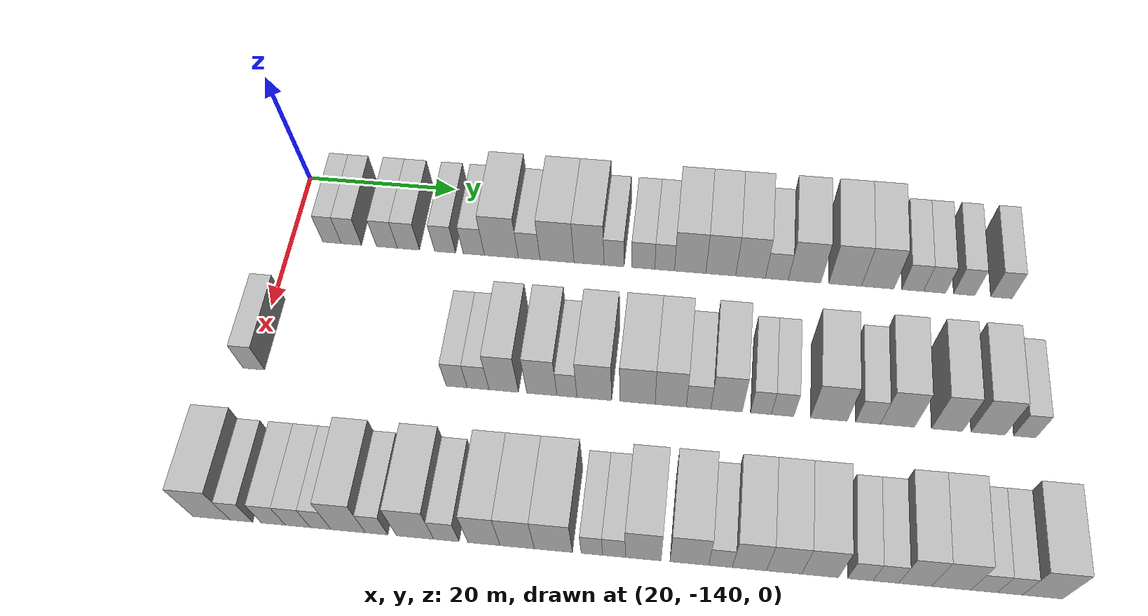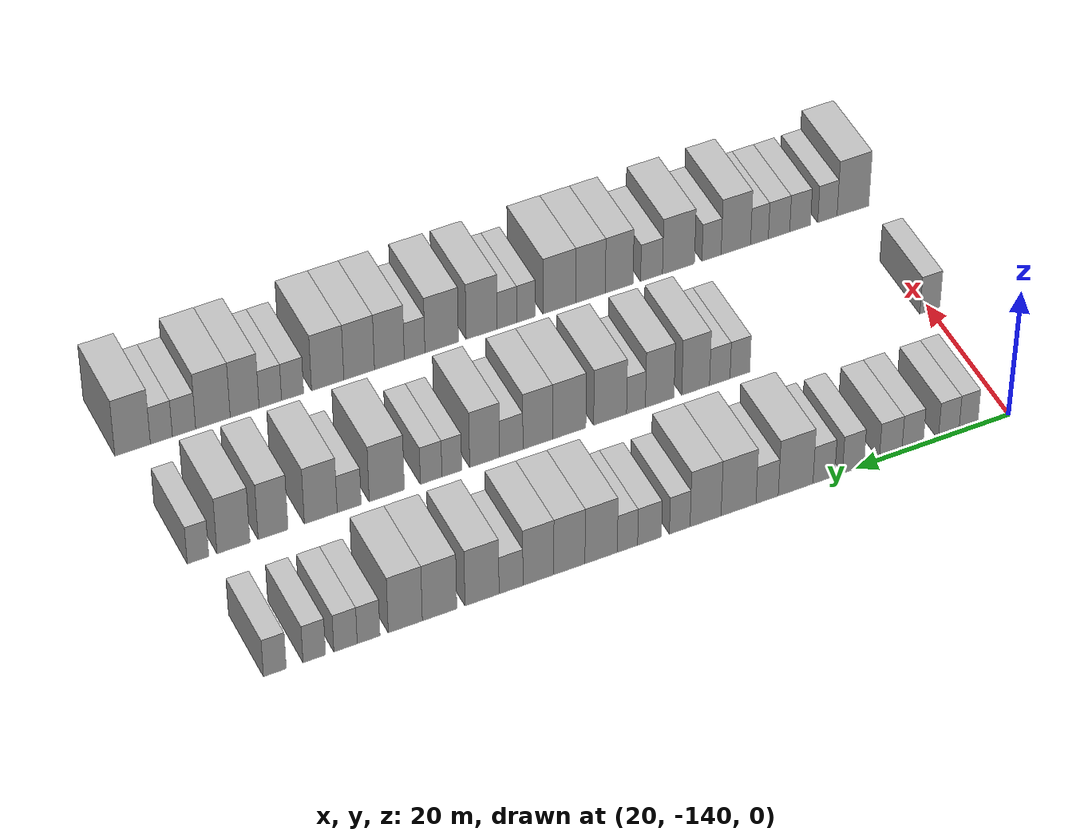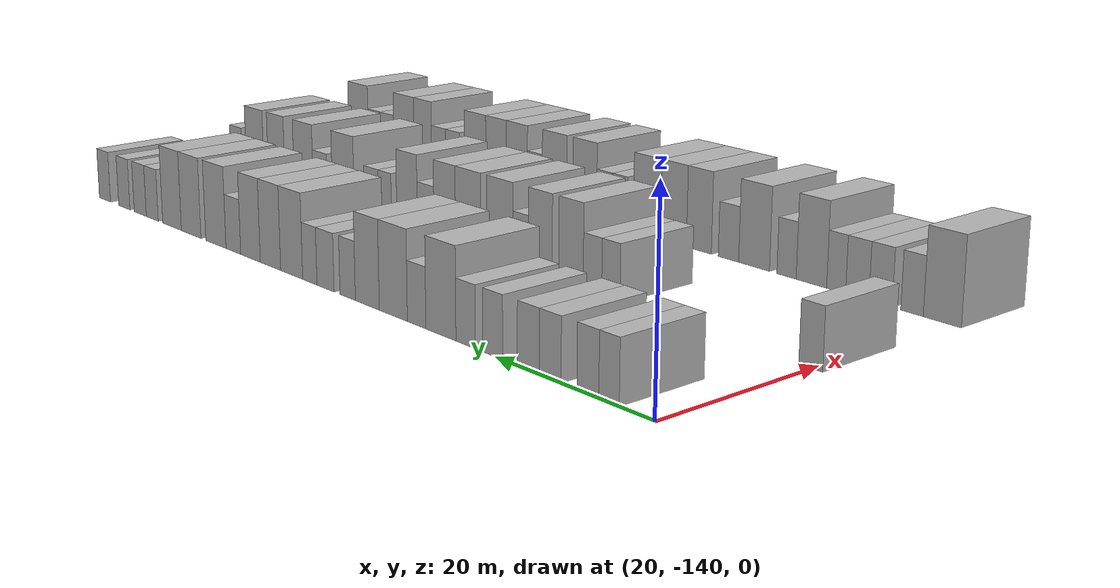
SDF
<sdf version="1.6">
 <world name="default">
  <model name="building_22">
   <static>1</static>
   <pose>25.0000 -134.5706 0 0.000000 0.000000 0.000000</pose>
   <link name="link">
    <pose>0 0 3.00 0 0 0</pose>
    <collision name="collision"><geometry><box><size>10.0000 2.4585 6.0000</size></box></geometry></collision>
    <visual name="visual">
     <cast_shadows>0</cast_shadows>
     <geometry><box><size>10.0000 2.4585 6.0000</size></box></geometry>
     <material>
      <script>
       <uri>model://HANNAS_wall/materials/scripts</uri>
       <uri>model://HANNAS_wall/materials/textures</uri>
       <name>vrc/HANNAS_wall</name>
      </script>
     </material>
    </visual>
   </link>
  </model>
  <model name="building_23">
   <static>1</static>
   <pose>25.0000 -131.9999 0 0.000000 0.000000 0.000000</pose>
   <link name="link">
    <pose>0 0 3.00 0 0 0</pose>
    <collision name="collision"><geometry><box><size>10.0000 2.6829 6.0000</size></box></geometry></collision>
    <visual name="visual">
     <cast_shadows>0</cast_shadows>
     <geometry><box><size>10.0000 2.6829 6.0000</size></box></geometry>
     <material>
      <script>
       <uri>model://HANNAS_wall/materials/scripts</uri>
       <uri>model://HANNAS_wall/materials/textures</uri>
       <name>vrc/HANNAS_wall</name>
      </script>
     </material>
    </visual>
   </link>
  </model>
  <model name="building_24">
   <static>1</static>
   <pose>25.0000 -127.2707 0 0.000000 0.000000 0.000000</pose>
   <link name="link">
    <pose>0 0 3.00 0 0 0</pose>
    <collision name="collision"><geometry><box><size>10.0000 2.7756 6.0000</size></box></geometry></collision>
    <visual name="visual">
     <cast_shadows>0</cast_shadows>
     <geometry><box><size>10.0000 2.7756 6.0000</size></box></geometry>
     <material>
      <script>
       <uri>model://HANNAS_wall/materials/scripts</uri>
       <uri>model://HANNAS_wall/materials/textures</uri>
       <name>vrc/HANNAS_wall</name>
      </script>
     </material>
    </visual>
   </link>
  </model>
  <model name="building_25">
   <static>1</static>
   <pose>25.0000 -124.4217 0 0.000000 0.000000 0.000000</pose>
   <link name="link">
    <pose>0 0 3.00 0 0 0</pose>
    <collision name="collision"><geometry><box><size>10.0000 2.9224 6.0000</size></box></geometry></collision>
    <visual name="visual">
     <cast_shadows>0</cast_shadows>
     <geometry><box><size>10.0000 2.9224 6.0000</size></box></geometry>
     <material>
      <script>
       <uri>model://HANNAS_wall/materials/scripts</uri>
       <uri>model://HANNAS_wall/materials/textures</uri>
       <name>vrc/HANNAS_wall</name>
      </script>
     </material>
    </visual>
   </link>
  </model>
  <model name="building_26">
   <static>1</static>
   <pose>25.0000 -119.5755 0 0.000000 0.000000 0.000000</pose>
   <link name="link">
    <pose>0 0 3.00 0 0 0</pose>
    <collision name="collision"><geometry><box><size>10.0000 2.7701 6.0000</size></box></geometry></collision>
    <visual name="visual">
     <cast_shadows>0</cast_shadows>
     <geometry><box><size>10.0000 2.7701 6.0000</size></box></geometry>
     <material>
      <script>
       <uri>model://HANNAS_wall/materials/scripts</uri>
       <uri>model://HANNAS_wall/materials/textures</uri>
       <name>vrc/HANNAS_wall</name>
      </script>
     </material>
    </visual>
   </link>
  </model>
  <model name="building_27">
   <static>1</static>
   <pose>25.0000 -115.7886 0 0.000000 0.000000 0.000000</pose>
   <link name="link">
    <pose>0 0 3.00 0 0 0</pose>
    <collision name="collision"><geometry><box><size>10.0000 2.8036 6.0000</size></box></geometry></collision>
    <visual name="visual">
     <cast_shadows>0</cast_shadows>
     <geometry><box><size>10.0000 2.8036 6.0000</size></box></geometry>
     <material>
      <script>
       <uri>model://HANNAS_wall/materials/scripts</uri>
       <uri>model://HANNAS_wall/materials/textures</uri>
       <name>vrc/HANNAS_wall</name>
      </script>
     </material>
    </visual>
   </link>
  </model>
  <model name="building_28">
   <static>1</static>
   <pose>25.0000 -112.1589 0 0.000000 0.000000 0.000000</pose>
   <link name="link">
    <pose>0 0 4.50 0 0 0</pose>
    <collision name="collision"><geometry><box><size>10.0000 4.4559 9.0000</size></box></geometry></collision>
    <visual name="visual">
     <cast_shadows>0</cast_shadows>
     <geometry><box><size>10.0000 4.4559 9.0000</size></box></geometry>
     <material>
      <script>
       <uri>model://HANNAS_wall/materials/scripts</uri>
       <uri>model://HANNAS_wall/materials/textures</uri>
       <name>vrc/HANNAS_wall</name>
      </script>
     </material>
    </visual>
   </link>
  </model>
  <model name="building_29">
   <static>1</static>
   <pose>25.0000 -108.5100 0 0.000000 0.000000 0.000000</pose>
   <link name="link">
    <pose>0 0 3.00 0 0 0</pose>
    <collision name="collision"><geometry><box><size>10.0000 2.8418 6.0000</size></box></geometry></collision>
    <visual name="visual">
     <cast_shadows>0</cast_shadows>
     <geometry><box><size>10.0000 2.8418 6.0000</size></box></geometry>
     <material>
      <script>
       <uri>model://HANNAS_wall/materials/scripts</uri>
       <uri>model://HANNAS_wall/materials/textures</uri>
       <name>vrc/HANNAS_wall</name>
      </script>
     </material>
    </visual>
   </link>
  </model>
  <model name="building_30">
   <static>1</static>
   <pose>25.0000 -104.8680 0 0.000000 0.000000 0.000000</pose>
   <link name="link">
    <pose>0 0 4.50 0 0 0</pose>
    <collision name="collision"><geometry><box><size>10.0000 4.4422 9.0000</size></box></geometry></collision>
    <visual name="visual">
     <cast_shadows>0</cast_shadows>
     <geometry><box><size>10.0000 4.4422 9.0000</size></box></geometry>
     <material>
      <script>
       <uri>model://HANNAS_wall/materials/scripts</uri>
       <uri>model://HANNAS_wall/materials/textures</uri>
       <name>vrc/HANNAS_wall</name>
      </script>
     </material>
    </visual>
   </link>
  </model>
  <model name="building_31">
   <static>1</static>
   <pose>25.0000 -100.6837 0 0.000000 0.000000 0.000000</pose>
   <link name="link">
    <pose>0 0 4.50 0 0 0</pose>
    <collision name="collision"><geometry><box><size>10.0000 3.9265 9.0000</size></box></geometry></collision>
    <visual name="visual">
     <cast_shadows>0</cast_shadows>
     <geometry><box><size>10.0000 3.9265 9.0000</size></box></geometry>
     <material>
      <script>
       <uri>model://HANNAS_wall/materials/scripts</uri>
       <uri>model://HANNAS_wall/materials/textures</uri>
       <name>vrc/HANNAS_wall</name>
      </script>
     </material>
    </visual>
   </link>
  </model>
  <model name="building_32">
   <static>1</static>
   <pose>25.0000 -97.4180 0 0.000000 0.000000 0.000000</pose>
   <link name="link">
    <pose>0 0 3.00 0 0 0</pose>
    <collision name="collision"><geometry><box><size>10.0000 2.6049 6.0000</size></box></geometry></collision>
    <visual name="visual">
     <cast_shadows>0</cast_shadows>
     <geometry><box><size>10.0000 2.6049 6.0000</size></box></geometry>
     <material>
      <script>
       <uri>model://HANNAS_wall/materials/scripts</uri>
       <uri>model://HANNAS_wall/materials/textures</uri>
       <name>vrc/HANNAS_wall</name>
      </script>
     </material>
    </visual>
   </link>
  </model>
  <model name="building_33">
   <static>1</static>
   <pose>25.0000 -93.6222 0 0.000000 0.000000 0.000000</pose>
   <link name="link">
    <pose>0 0 3.00 0 0 0</pose>
    <collision name="collision"><geometry><box><size>10.0000 2.9867 6.0000</size></box></geometry></collision>
    <visual name="visual">
     <cast_shadows>0</cast_shadows>
     <geometry><box><size>10.0000 2.9867 6.0000</size></box></geometry>
     <material>
      <script>
       <uri>model://HANNAS_wall/materials/scripts</uri>
       <uri>model://HANNAS_wall/materials/textures</uri>
       <name>vrc/HANNAS_wall</name>
      </script>
     </material>
    </visual>
   </link>
  </model>
  <model name="building_34">
   <static>1</static>
   <pose>25.0000 -90.8556 0 0.000000 0.000000 0.000000</pose>
   <link name="link">
    <pose>0 0 3.00 0 0 0</pose>
    <collision name="collision"><geometry><box><size>10.0000 2.5463 6.0000</size></box></geometry></collision>
    <visual name="visual">
     <cast_shadows>0</cast_shadows>
     <geometry><box><size>10.0000 2.5463 6.0000</size></box></geometry>
     <material>
      <script>
       <uri>model://HANNAS_wall/materials/scripts</uri>
       <uri>model://HANNAS_wall/materials/textures</uri>
       <name>vrc/HANNAS_wall</name>
      </script>
     </material>
    </visual>
   </link>
  </model>
  <model name="building_35">
   <static>1</static>
   <pose>25.0000 -87.5665 0 0.000000 0.000000 0.000000</pose>
   <link name="link">
    <pose>0 0 4.50 0 0 0</pose>
    <collision name="collision"><geometry><box><size>10.0000 4.0319 9.0000</size></box></geometry></collision>
    <visual name="visual">
     <cast_shadows>0</cast_shadows>
     <geometry><box><size>10.0000 4.0319 9.0000</size></box></geometry>
     <material>
      <script>
       <uri>model://HANNAS_wall/materials/scripts</uri>
       <uri>model://HANNAS_wall/materials/textures</uri>
       <name>vrc/HANNAS_wall</name>
      </script>
     </material>
    </visual>
   </link>
  </model>
  <model name="building_36">
   <static>1</static>
   <pose>25.0000 -83.6215 0 0.000000 0.000000 0.000000</pose>
   <link name="link">
    <pose>0 0 4.50 0 0 0</pose>
    <collision name="collision"><geometry><box><size>10.0000 3.8579 9.0000</size></box></geometry></collision>
    <visual name="visual">
     <cast_shadows>0</cast_shadows>
     <geometry><box><size>10.0000 3.8579 9.0000</size></box></geometry>
     <material>
      <script>
       <uri>model://HANNAS_wall/materials/scripts</uri>
       <uri>model://HANNAS_wall/materials/textures</uri>
       <name>vrc/HANNAS_wall</name>
      </script>
     </material>
    </visual>
   </link>
  </model>
  <model name="building_37">
   <static>1</static>
   <pose>25.0000 -79.7842 0 0.000000 0.000000 0.000000</pose>
   <link name="link">
    <pose>0 0 4.50 0 0 0</pose>
    <collision name="collision"><geometry><box><size>10.0000 3.8168 9.0000</size></box></geometry></collision>
    <visual name="visual">
     <cast_shadows>0</cast_shadows>
     <geometry><box><size>10.0000 3.8168 9.0000</size></box></geometry>
     <material>
      <script>
       <uri>model://HANNAS_wall/materials/scripts</uri>
       <uri>model://HANNAS_wall/materials/textures</uri>
       <name>vrc/HANNAS_wall</name>
      </script>
     </material>
    </visual>
   </link>
  </model>
  <model name="building_38">
   <static>1</static>
   <pose>25.0000 -76.4047 0 0.000000 0.000000 0.000000</pose>
   <link name="link">
    <pose>0 0 3.00 0 0 0</pose>
    <collision name="collision"><geometry><box><size>10.0000 2.9422 6.0000</size></box></geometry></collision>
    <visual name="visual">
     <cast_shadows>0</cast_shadows>
     <geometry><box><size>10.0000 2.9422 6.0000</size></box></geometry>
     <material>
      <script>
       <uri>model://HANNAS_wall/materials/scripts</uri>
       <uri>model://HANNAS_wall/materials/textures</uri>
       <name>vrc/HANNAS_wall</name>
      </script>
     </material>
    </visual>
   </link>
  </model>
  <model name="building_39">
   <static>1</static>
   <pose>25.0000 -72.8453 0 0.000000 0.000000 0.000000</pose>
   <link name="link">
    <pose>0 0 4.50 0 0 0</pose>
    <collision name="collision"><geometry><box><size>10.0000 4.1766 9.0000</size></box></geometry></collision>
    <visual name="visual">
     <cast_shadows>0</cast_shadows>
     <geometry><box><size>10.0000 4.1766 9.0000</size></box></geometry>
     <material>
      <script>
       <uri>model://HANNAS_wall/materials/scripts</uri>
       <uri>model://HANNAS_wall/materials/textures</uri>
       <name>vrc/HANNAS_wall</name>
      </script>
     </material>
    </visual>
   </link>
  </model>
  <model name="building_40">
   <static>1</static>
   <pose>25.0000 -67.6591 0 0.000000 0.000000 0.000000</pose>
   <link name="link">
    <pose>0 0 4.50 0 0 0</pose>
    <collision name="collision"><geometry><box><size>10.0000 4.1959 9.0000</size></box></geometry></collision>
    <visual name="visual">
     <cast_shadows>0</cast_shadows>
     <geometry><box><size>10.0000 4.1959 9.0000</size></box></geometry>
     <material>
      <script>
       <uri>model://HANNAS_wall/materials/scripts</uri>
       <uri>model://HANNAS_wall/materials/textures</uri>
       <name>vrc/HANNAS_wall</name>
      </script>
     </material>
    </visual>
   </link>
  </model>
  <model name="building_41">
   <static>1</static>
   <pose>25.0000 -63.4962 0 0.000000 0.000000 0.000000</pose>
   <link name="link">
    <pose>0 0 4.50 0 0 0</pose>
    <collision name="collision"><geometry><box><size>10.0000 4.1298 9.0000</size></box></geometry></collision>
    <visual name="visual">
     <cast_shadows>0</cast_shadows>
     <geometry><box><size>10.0000 4.1298 9.0000</size></box></geometry>
     <material>
      <script>
       <uri>model://HANNAS_wall/materials/scripts</uri>
       <uri>model://HANNAS_wall/materials/textures</uri>
       <name>vrc/HANNAS_wall</name>
      </script>
     </material>
    </visual>
   </link>
  </model>
  <model name="building_42">
   <static>1</static>
   <pose>25.0000 -59.0574 0 0.000000 0.000000 0.000000</pose>
   <link name="link">
    <pose>0 0 3.00 0 0 0</pose>
    <collision name="collision"><geometry><box><size>10.0000 2.7478 6.0000</size></box></geometry></collision>
    <visual name="visual">
     <cast_shadows>0</cast_shadows>
     <geometry><box><size>10.0000 2.7478 6.0000</size></box></geometry>
     <material>
      <script>
       <uri>model://HANNAS_wall/materials/scripts</uri>
       <uri>model://HANNAS_wall/materials/textures</uri>
       <name>vrc/HANNAS_wall</name>
      </script>
     </material>
    </visual>
   </link>
  </model>
  <model name="building_43">
   <static>1</static>
   <pose>25.0000 -56.2807 0 0.000000 0.000000 0.000000</pose>
   <link name="link">
    <pose>0 0 3.00 0 0 0</pose>
    <collision name="collision"><geometry><box><size>10.0000 2.8056 6.0000</size></box></geometry></collision>
    <visual name="visual">
     <cast_shadows>0</cast_shadows>
     <geometry><box><size>10.0000 2.8056 6.0000</size></box></geometry>
     <material>
      <script>
       <uri>model://HANNAS_wall/materials/scripts</uri>
       <uri>model://HANNAS_wall/materials/textures</uri>
       <name>vrc/HANNAS_wall</name>
      </script>
     </material>
    </visual>
   </link>
  </model>
  <model name="building_44">
   <static>1</static>
   <pose>25.0000 -52.5314 0 0.000000 0.000000 0.000000</pose>
   <link name="link">
    <pose>0 0 3.00 0 0 0</pose>
    <collision name="collision"><geometry><box><size>10.0000 2.6931 6.0000</size></box></geometry></collision>
    <visual name="visual">
     <cast_shadows>0</cast_shadows>
     <geometry><box><size>10.0000 2.6931 6.0000</size></box></geometry>
     <material>
      <script>
       <uri>model://HANNAS_wall/materials/scripts</uri>
       <uri>model://HANNAS_wall/materials/textures</uri>
       <name>vrc/HANNAS_wall</name>
      </script>
     </material>
    </visual>
   </link>
  </model>
  <model name="building_45">
   <static>1</static>
   <pose>25.0000 -47.8277 0 0.000000 0.000000 0.000000</pose>
   <link name="link">
    <pose>0 0 3.00 0 0 0</pose>
    <collision name="collision"><geometry><box><size>10.0000 2.7142 6.0000</size></box></geometry></collision>
    <visual name="visual">
     <cast_shadows>0</cast_shadows>
     <geometry><box><size>10.0000 2.7142 6.0000</size></box></geometry>
     <material>
      <script>
       <uri>model://HANNAS_wall/materials/scripts</uri>
       <uri>model://HANNAS_wall/materials/textures</uri>
       <name>vrc/HANNAS_wall</name>
      </script>
     </material>
    </visual>
   </link>
  </model>
  <model name="building_143">
   <static>1</static>
   <pose>44.0000 -139.9096 0 0.000000 0.000000 0.000000</pose>
   <link name="link">
    <pose>0 0 3.00 0 0 0</pose>
    <collision name="collision"><geometry><box><size>10.0000 2.6911 6.0000</size></box></geometry></collision>
    <visual name="visual">
     <cast_shadows>0</cast_shadows>
     <geometry><box><size>10.0000 2.6911 6.0000</size></box></geometry>
     <material>
      <script>
       <uri>model://HANNAS_wall/materials/scripts</uri>
       <uri>model://HANNAS_wall/materials/textures</uri>
       <name>vrc/HANNAS_wall</name>
      </script>
     </material>
    </visual>
   </link>
  </model>
  <model name="building_144">
   <static>1</static>
   <pose>44.0000 -114.6893 0 0.000000 0.000000 0.000000</pose>
   <link name="link">
    <pose>0 0 3.00 0 0 0</pose>
    <collision name="collision"><geometry><box><size>10.0000 2.5832 6.0000</size></box></geometry></collision>
    <visual name="visual">
     <cast_shadows>0</cast_shadows>
     <geometry><box><size>10.0000 2.5832 6.0000</size></box></geometry>
     <material>
      <script>
       <uri>model://HANNAS_wall/materials/scripts</uri>
       <uri>model://HANNAS_wall/materials/textures</uri>
       <name>vrc/HANNAS_wall</name>
      </script>
     </material>
    </visual>
   </link>
  </model>
  <model name="building_145">
   <static>1</static>
   <pose>44.0000 -112.0608 0 0.000000 0.000000 0.000000</pose>
   <link name="link">
    <pose>0 0 3.00 0 0 0</pose>
    <collision name="collision"><geometry><box><size>10.0000 2.6738 6.0000</size></box></geometry></collision>
    <visual name="visual">
     <cast_shadows>0</cast_shadows>
     <geometry><box><size>10.0000 2.6738 6.0000</size></box></geometry>
     <material>
      <script>
       <uri>model://HANNAS_wall/materials/scripts</uri>
       <uri>model://HANNAS_wall/materials/textures</uri>
       <name>vrc/HANNAS_wall</name>
      </script>
     </material>
    </visual>
   </link>
  </model>
  <model name="building_146">
   <static>1</static>
   <pose>44.0000 -108.9138 0 0.000000 0.000000 0.000000</pose>
   <link name="link">
    <pose>0 0 4.50 0 0 0</pose>
    <collision name="collision"><geometry><box><size>10.0000 3.6202 9.0000</size></box></geometry></collision>
    <visual name="visual">
     <cast_shadows>0</cast_shadows>
     <geometry><box><size>10.0000 3.6202 9.0000</size></box></geometry>
     <material>
      <script>
       <uri>model://HANNAS_wall/materials/scripts</uri>
       <uri>model://HANNAS_wall/materials/textures</uri>
       <name>vrc/HANNAS_wall</name>
      </script>
     </material>
    </visual>
   </link>
  </model>
  <model name="building_147">
   <static>1</static>
   <pose>44.0000 -104.2568 0 0.000000 0.000000 0.000000</pose>
   <link name="link">
    <pose>0 0 4.50 0 0 0</pose>
    <collision name="collision"><geometry><box><size>10.0000 3.6939 9.0000</size></box></geometry></collision>
    <visual name="visual">
     <cast_shadows>0</cast_shadows>
     <geometry><box><size>10.0000 3.6939 9.0000</size></box></geometry>
     <material>
      <script>
       <uri>model://HANNAS_wall/materials/scripts</uri>
       <uri>model://HANNAS_wall/materials/textures</uri>
       <name>vrc/HANNAS_wall</name>
      </script>
     </material>
    </visual>
   </link>
  </model>
  <model name="building_148">
   <static>1</static>
   <pose>44.0000 -101.1942 0 0.000000 0.000000 0.000000</pose>
   <link name="link">
    <pose>0 0 3.00 0 0 0</pose>
    <collision name="collision"><geometry><box><size>10.0000 2.4314 6.0000</size></box></geometry></collision>
    <visual name="visual">
     <cast_shadows>0</cast_shadows>
     <geometry><box><size>10.0000 2.4314 6.0000</size></box></geometry>
     <material>
      <script>
       <uri>model://HANNAS_wall/materials/scripts</uri>
       <uri>model://HANNAS_wall/materials/textures</uri>
       <name>vrc/HANNAS_wall</name>
      </script>
     </material>
    </visual>
   </link>
  </model>
  <model name="building_149">
   <static>1</static>
   <pose>44.0000 -97.8675 0 0.000000 0.000000 0.000000</pose>
   <link name="link">
    <pose>0 0 4.50 0 0 0</pose>
    <collision name="collision"><geometry><box><size>10.0000 4.2219 9.0000</size></box></geometry></collision>
    <visual name="visual">
     <cast_shadows>0</cast_shadows>
     <geometry><box><size>10.0000 4.2219 9.0000</size></box></geometry>
     <material>
      <script>
       <uri>model://HANNAS_wall/materials/scripts</uri>
       <uri>model://HANNAS_wall/materials/textures</uri>
       <name>vrc/HANNAS_wall</name>
      </script>
     </material>
    </visual>
   </link>
  </model>
  <model name="building_150">
   <static>1</static>
   <pose>44.0000 -92.6258 0 0.000000 0.000000 0.000000</pose>
   <link name="link">
    <pose>0 0 4.50 0 0 0</pose>
    <collision name="collision"><geometry><box><size>10.0000 4.2616 9.0000</size></box></geometry></collision>
    <visual name="visual">
     <cast_shadows>0</cast_shadows>
     <geometry><box><size>10.0000 4.2616 9.0000</size></box></geometry>
     <material>
      <script>
       <uri>model://HANNAS_wall/materials/scripts</uri>
       <uri>model://HANNAS_wall/materials/textures</uri>
       <name>vrc/HANNAS_wall</name>
      </script>
     </material>
    </visual>
   </link>
  </model>
  <model name="building_151">
   <static>1</static>
   <pose>44.0000 -88.6178 0 0.000000 0.000000 0.000000</pose>
   <link name="link">
    <pose>0 0 4.50 0 0 0</pose>
    <collision name="collision"><geometry><box><size>10.0000 3.7545 9.0000</size></box></geometry></collision>
    <visual name="visual">
     <cast_shadows>0</cast_shadows>
     <geometry><box><size>10.0000 3.7545 9.0000</size></box></geometry>
     <material>
      <script>
       <uri>model://HANNAS_wall/materials/scripts</uri>
       <uri>model://HANNAS_wall/materials/textures</uri>
       <name>vrc/HANNAS_wall</name>
      </script>
     </material>
    </visual>
   </link>
  </model>
  <model name="building_152">
   <static>1</static>
   <pose>44.0000 -85.2584 0 0.000000 0.000000 0.000000</pose>
   <link name="link">
    <pose>0 0 3.00 0 0 0</pose>
    <collision name="collision"><geometry><box><size>10.0000 2.9643 6.0000</size></box></geometry></collision>
    <visual name="visual">
     <cast_shadows>0</cast_shadows>
     <geometry><box><size>10.0000 2.9643 6.0000</size></box></geometry>
     <material>
      <script>
       <uri>model://HANNAS_wall/materials/scripts</uri>
       <uri>model://HANNAS_wall/materials/textures</uri>
       <name>vrc/HANNAS_wall</name>
      </script>
     </material>
    </visual>
   </link>
  </model>
  <model name="building_153">
   <static>1</static>
   <pose>44.0000 -81.8917 0 0.000000 0.000000 0.000000</pose>
   <link name="link">
    <pose>0 0 4.50 0 0 0</pose>
    <collision name="collision"><geometry><box><size>10.0000 3.7691 9.0000</size></box></geometry></collision>
    <visual name="visual">
     <cast_shadows>0</cast_shadows>
     <geometry><box><size>10.0000 3.7691 9.0000</size></box></geometry>
     <material>
      <script>
       <uri>model://HANNAS_wall/materials/scripts</uri>
       <uri>model://HANNAS_wall/materials/textures</uri>
       <name>vrc/HANNAS_wall</name>
      </script>
     </material>
    </visual>
   </link>
  </model>
  <model name="building_154">
   <static>1</static>
   <pose>44.0000 -77.7633 0 0.000000 0.000000 0.000000</pose>
   <link name="link">
    <pose>0 0 3.00 0 0 0</pose>
    <collision name="collision"><geometry><box><size>10.0000 2.4878 6.0000</size></box></geometry></collision>
    <visual name="visual">
     <cast_shadows>0</cast_shadows>
     <geometry><box><size>10.0000 2.4878 6.0000</size></box></geometry>
     <material>
      <script>
       <uri>model://HANNAS_wall/materials/scripts</uri>
       <uri>model://HANNAS_wall/materials/textures</uri>
       <name>vrc/HANNAS_wall</name>
      </script>
     </material>
    </visual>
   </link>
  </model>
  <model name="building_155">
   <static>1</static>
   <pose>44.0000 -75.1732 0 0.000000 0.000000 0.000000</pose>
   <link name="link">
    <pose>0 0 3.00 0 0 0</pose>
    <collision name="collision"><geometry><box><size>10.0000 2.6924 6.0000</size></box></geometry></collision>
    <visual name="visual">
     <cast_shadows>0</cast_shadows>
     <geometry><box><size>10.0000 2.6924 6.0000</size></box></geometry>
     <material>
      <script>
       <uri>model://HANNAS_wall/materials/scripts</uri>
       <uri>model://HANNAS_wall/materials/textures</uri>
       <name>vrc/HANNAS_wall</name>
      </script>
     </material>
    </visual>
   </link>
  </model>
  <model name="building_156">
   <static>1</static>
   <pose>44.0000 -69.6423 0 0.000000 0.000000 0.000000</pose>
   <link name="link">
    <pose>0 0 4.50 0 0 0</pose>
    <collision name="collision"><geometry><box><size>10.0000 4.3695 9.0000</size></box></geometry></collision>
    <visual name="visual">
     <cast_shadows>0</cast_shadows>
     <geometry><box><size>10.0000 4.3695 9.0000</size></box></geometry>
     <material>
      <script>
       <uri>model://HANNAS_wall/materials/scripts</uri>
       <uri>model://HANNAS_wall/materials/textures</uri>
       <name>vrc/HANNAS_wall</name>
      </script>
     </material>
    </visual>
   </link>
  </model>
  <model name="building_157">
   <static>1</static>
   <pose>44.0000 -64.9784 0 0.000000 0.000000 0.000000</pose>
   <link name="link">
    <pose>0 0 3.00 0 0 0</pose>
    <collision name="collision"><geometry><box><size>10.0000 2.9583 6.0000</size></box></geometry></collision>
    <visual name="visual">
     <cast_shadows>0</cast_shadows>
     <geometry><box><size>10.0000 2.9583 6.0000</size></box></geometry>
     <material>
      <script>
       <uri>model://HANNAS_wall/materials/scripts</uri>
       <uri>model://HANNAS_wall/materials/textures</uri>
       <name>vrc/HANNAS_wall</name>
      </script>
     </material>
    </visual>
   </link>
  </model>
  <model name="building_158">
   <static>1</static>
   <pose>44.0000 -61.4748 0 0.000000 0.000000 0.000000</pose>
   <link name="link">
    <pose>0 0 4.50 0 0 0</pose>
    <collision name="collision"><geometry><box><size>10.0000 4.0489 9.0000</size></box></geometry></collision>
    <visual name="visual">
     <cast_shadows>0</cast_shadows>
     <geometry><box><size>10.0000 4.0489 9.0000</size></box></geometry>
     <material>
      <script>
       <uri>model://HANNAS_wall/materials/scripts</uri>
       <uri>model://HANNAS_wall/materials/textures</uri>
       <name>vrc/HANNAS_wall</name>
      </script>
     </material>
    </visual>
   </link>
  </model>
  <model name="building_159">
   <static>1</static>
   <pose>44.0000 -55.6212 0 0.000000 0.000000 0.000000</pose>
   <link name="link">
    <pose>0 0 4.50 0 0 0</pose>
    <collision name="collision"><geometry><box><size>10.0000 3.6583 9.0000</size></box></geometry></collision>
    <visual name="visual">
     <cast_shadows>0</cast_shadows>
     <geometry><box><size>10.0000 3.6583 9.0000</size></box></geometry>
     <material>
      <script>
       <uri>model://HANNAS_wall/materials/scripts</uri>
       <uri>model://HANNAS_wall/materials/textures</uri>
       <name>vrc/HANNAS_wall</name>
      </script>
     </material>
    </visual>
   </link>
  </model>
  <model name="building_160">
   <static>1</static>
   <pose>44.0000 -50.7853 0 0.000000 0.000000 0.000000</pose>
   <link name="link">
    <pose>0 0 4.50 0 0 0</pose>
    <collision name="collision"><geometry><box><size>10.0000 4.0134 9.0000</size></box></geometry></collision>
    <visual name="visual">
     <cast_shadows>0</cast_shadows>
     <geometry><box><size>10.0000 4.0134 9.0000</size></box></geometry>
     <material>
      <script>
       <uri>model://HANNAS_wall/materials/scripts</uri>
       <uri>model://HANNAS_wall/materials/textures</uri>
       <name>vrc/HANNAS_wall</name>
      </script>
     </material>
    </visual>
   </link>
  </model>
  <model name="building_161">
   <static>1</static>
   <pose>44.0000 -46.4750 0 0.000000 0.000000 0.000000</pose>
   <link name="link">
    <pose>0 0 3.00 0 0 0</pose>
    <collision name="collision"><geometry><box><size>10.0000 2.6072 6.0000</size></box></geometry></collision>
    <visual name="visual">
     <cast_shadows>0</cast_shadows>
     <geometry><box><size>10.0000 2.6072 6.0000</size></box></geometry>
     <material>
      <script>
       <uri>model://HANNAS_wall/materials/scripts</uri>
       <uri>model://HANNAS_wall/materials/textures</uri>
       <name>vrc/HANNAS_wall</name>
      </script>
     </material>
    </visual>
   </link>
  </model>
  <model name="building_249">
   <static>1</static>
   <pose>63.0000 -139.6780 0 0.000000 0.000000 0.000000</pose>
   <link name="link">
    <pose>0 0 4.50 0 0 0</pose>
    <collision name="collision"><geometry><box><size>10.0000 4.3351 9.0000</size></box></geometry></collision>
    <visual name="visual">
     <cast_shadows>0</cast_shadows>
     <geometry><box><size>10.0000 4.3351 9.0000</size></box></geometry>
     <material>
      <script>
       <uri>model://HANNAS_wall/materials/scripts</uri>
       <uri>model://HANNAS_wall/materials/textures</uri>
       <name>vrc/HANNAS_wall</name>
      </script>
     </material>
    </visual>
   </link>
  </model>
  <model name="building_250">
   <static>1</static>
   <pose>63.0000 -136.1952 0 0.000000 0.000000 0.000000</pose>
   <link name="link">
    <pose>0 0 3.00 0 0 0</pose>
    <collision name="collision"><geometry><box><size>10.0000 2.6306 6.0000</size></box></geometry></collision>
    <visual name="visual">
     <cast_shadows>0</cast_shadows>
     <geometry><box><size>10.0000 2.6306 6.0000</size></box></geometry>
     <material>
      <script>
       <uri>model://HANNAS_wall/materials/scripts</uri>
       <uri>model://HANNAS_wall/materials/textures</uri>
       <name>vrc/HANNAS_wall</name>
      </script>
     </material>
    </visual>
   </link>
  </model>
  <model name="building_251">
   <static>1</static>
   <pose>63.0000 -132.4720 0 0.000000 0.000000 0.000000</pose>
   <link name="link">
    <pose>0 0 3.00 0 0 0</pose>
    <collision name="collision"><geometry><box><size>10.0000 2.8159 6.0000</size></box></geometry></collision>
    <visual name="visual">
     <cast_shadows>0</cast_shadows>
     <geometry><box><size>10.0000 2.8159 6.0000</size></box></geometry>
     <material>
      <script>
       <uri>model://HANNAS_wall/materials/scripts</uri>
       <uri>model://HANNAS_wall/materials/textures</uri>
       <name>vrc/HANNAS_wall</name>
      </script>
     </material>
    </visual>
   </link>
  </model>
  <model name="building_252">
   <static>1</static>
   <pose>63.0000 -129.6201 0 0.000000 0.000000 0.000000</pose>
   <link name="link">
    <pose>0 0 3.00 0 0 0</pose>
    <collision name="collision"><geometry><box><size>10.0000 2.8879 6.0000</size></box></geometry></collision>
    <visual name="visual">
     <cast_shadows>0</cast_shadows>
     <geometry><box><size>10.0000 2.8879 6.0000</size></box></geometry>
     <material>
      <script>
       <uri>model://HANNAS_wall/materials/scripts</uri>
       <uri>model://HANNAS_wall/materials/textures</uri>
       <name>vrc/HANNAS_wall</name>
      </script>
     </material>
    </visual>
   </link>
  </model>
  <model name="building_253">
   <static>1</static>
   <pose>63.0000 -126.9752 0 0.000000 0.000000 0.000000</pose>
   <link name="link">
    <pose>0 0 3.00 0 0 0</pose>
    <collision name="collision"><geometry><box><size>10.0000 2.4019 6.0000</size></box></geometry></collision>
    <visual name="visual">
     <cast_shadows>0</cast_shadows>
     <geometry><box><size>10.0000 2.4019 6.0000</size></box></geometry>
     <material>
      <script>
       <uri>model://HANNAS_wall/materials/scripts</uri>
       <uri>model://HANNAS_wall/materials/textures</uri>
       <name>vrc/HANNAS_wall</name>
      </script>
     </material>
    </visual>
   </link>
  </model>
  <model name="building_254">
   <static>1</static>
   <pose>63.0000 -123.7954 0 0.000000 0.000000 0.000000</pose>
   <link name="link">
    <pose>0 0 4.50 0 0 0</pose>
    <collision name="collision"><geometry><box><size>10.0000 3.9578 9.0000</size></box></geometry></collision>
    <visual name="visual">
     <cast_shadows>0</cast_shadows>
     <geometry><box><size>10.0000 3.9578 9.0000</size></box></geometry>
     <material>
      <script>
       <uri>model://HANNAS_wall/materials/scripts</uri>
       <uri>model://HANNAS_wall/materials/textures</uri>
       <name>vrc/HANNAS_wall</name>
      </script>
     </material>
    </visual>
   </link>
  </model>
  <model name="building_255">
   <static>1</static>
   <pose>63.0000 -120.5323 0 0.000000 0.000000 0.000000</pose>
   <link name="link">
    <pose>0 0 3.00 0 0 0</pose>
    <collision name="collision"><geometry><box><size>10.0000 2.5684 6.0000</size></box></geometry></collision>
    <visual name="visual">
     <cast_shadows>0</cast_shadows>
     <geometry><box><size>10.0000 2.5684 6.0000</size></box></geometry>
     <material>
      <script>
       <uri>model://HANNAS_wall/materials/scripts</uri>
       <uri>model://HANNAS_wall/materials/textures</uri>
       <name>vrc/HANNAS_wall</name>
      </script>
     </material>
    </visual>
   </link>
  </model>
  <model name="building_256">
   <static>1</static>
   <pose>63.0000 -116.1132 0 0.000000 0.000000 0.000000</pose>
   <link name="link">
    <pose>0 0 4.50 0 0 0</pose>
    <collision name="collision"><geometry><box><size>10.0000 4.2698 9.0000</size></box></geometry></collision>
    <visual name="visual">
     <cast_shadows>0</cast_shadows>
     <geometry><box><size>10.0000 4.2698 9.0000</size></box></geometry>
     <material>
      <script>
       <uri>model://HANNAS_wall/materials/scripts</uri>
       <uri>model://HANNAS_wall/materials/textures</uri>
       <name>vrc/HANNAS_wall</name>
      </script>
     </material>
    </visual>
   </link>
  </model>
  <model name="building_257">
   <static>1</static>
   <pose>63.0000 -112.5286 0 0.000000 0.000000 0.000000</pose>
   <link name="link">
    <pose>0 0 3.00 0 0 0</pose>
    <collision name="collision"><geometry><box><size>10.0000 2.8994 6.0000</size></box></geometry></collision>
    <visual name="visual">
     <cast_shadows>0</cast_shadows>
     <geometry><box><size>10.0000 2.8994 6.0000</size></box></geometry>
     <material>
      <script>
       <uri>model://HANNAS_wall/materials/scripts</uri>
       <uri>model://HANNAS_wall/materials/textures</uri>
       <name>vrc/HANNAS_wall</name>
      </script>
     </material>
    </visual>
   </link>
  </model>
  <model name="building_258">
   <static>1</static>
   <pose>63.0000 -108.2444 0 0.000000 0.000000 0.000000</pose>
   <link name="link">
    <pose>0 0 4.50 0 0 0</pose>
    <collision name="collision"><geometry><box><size>10.0000 3.6691 9.0000</size></box></geometry></collision>
    <visual name="visual">
     <cast_shadows>0</cast_shadows>
     <geometry><box><size>10.0000 3.6691 9.0000</size></box></geometry>
     <material>
      <script>
       <uri>model://HANNAS_wall/materials/scripts</uri>
       <uri>model://HANNAS_wall/materials/textures</uri>
       <name>vrc/HANNAS_wall</name>
      </script>
     </material>
    </visual>
   </link>
  </model>
  <model name="building_259">
   <static>1</static>
   <pose>63.0000 -104.4614 0 0.000000 0.000000 0.000000</pose>
   <link name="link">
    <pose>0 0 4.50 0 0 0</pose>
    <collision name="collision"><geometry><box><size>10.0000 3.8968 9.0000</size></box></geometry></collision>
    <visual name="visual">
     <cast_shadows>0</cast_shadows>
     <geometry><box><size>10.0000 3.8968 9.0000</size></box></geometry>
     <material>
      <script>
       <uri>model://HANNAS_wall/materials/scripts</uri>
       <uri>model://HANNAS_wall/materials/textures</uri>
       <name>vrc/HANNAS_wall</name>
      </script>
     </material>
    </visual>
   </link>
  </model>
  <model name="building_260">
   <static>1</static>
   <pose>63.0000 -100.3607 0 0.000000 0.000000 0.000000</pose>
   <link name="link">
    <pose>0 0 4.50 0 0 0</pose>
    <collision name="collision"><geometry><box><size>10.0000 4.3047 9.0000</size></box></geometry></collision>
    <visual name="visual">
     <cast_shadows>0</cast_shadows>
     <geometry><box><size>10.0000 4.3047 9.0000</size></box></geometry>
     <material>
      <script>
       <uri>model://HANNAS_wall/materials/scripts</uri>
       <uri>model://HANNAS_wall/materials/textures</uri>
       <name>vrc/HANNAS_wall</name>
      </script>
     </material>
    </visual>
   </link>
  </model>
  <model name="building_261">
   <static>1</static>
   <pose>63.0000 -96.0054 0 0.000000 0.000000 0.000000</pose>
   <link name="link">
    <pose>0 0 3.00 0 0 0</pose>
    <collision name="collision"><geometry><box><size>10.0000 2.4059 6.0000</size></box></geometry></collision>
    <visual name="visual">
     <cast_shadows>0</cast_shadows>
     <geometry><box><size>10.0000 2.4059 6.0000</size></box></geometry>
     <material>
      <script>
       <uri>model://HANNAS_wall/materials/scripts</uri>
       <uri>model://HANNAS_wall/materials/textures</uri>
       <name>vrc/HANNAS_wall</name>
      </script>
     </material>
    </visual>
   </link>
  </model>
  <model name="building_262">
   <static>1</static>
   <pose>63.0000 -93.5291 0 0.000000 0.000000 0.000000</pose>
   <link name="link">
    <pose>0 0 3.00 0 0 0</pose>
    <collision name="collision"><geometry><box><size>10.0000 2.5468 6.0000</size></box></geometry></collision>
    <visual name="visual">
     <cast_shadows>0</cast_shadows>
     <geometry><box><size>10.0000 2.5468 6.0000</size></box></geometry>
     <material>
      <script>
       <uri>model://HANNAS_wall/materials/scripts</uri>
       <uri>model://HANNAS_wall/materials/textures</uri>
       <name>vrc/HANNAS_wall</name>
      </script>
     </material>
    </visual>
   </link>
  </model>
  <model name="building_263">
   <static>1</static>
   <pose>63.0000 -90.2463 0 0.000000 0.000000 0.000000</pose>
   <link name="link">
    <pose>0 0 4.50 0 0 0</pose>
    <collision name="collision"><geometry><box><size>10.0000 4.0188 9.0000</size></box></geometry></collision>
    <visual name="visual">
     <cast_shadows>0</cast_shadows>
     <geometry><box><size>10.0000 4.0188 9.0000</size></box></geometry>
     <material>
      <script>
       <uri>model://HANNAS_wall/materials/scripts</uri>
       <uri>model://HANNAS_wall/materials/textures</uri>
       <name>vrc/HANNAS_wall</name>
      </script>
     </material>
    </visual>
   </link>
  </model>
  <model name="building_264">
   <static>1</static>
   <pose>63.0000 -85.0786 0 0.000000 0.000000 0.000000</pose>
   <link name="link">
    <pose>0 0 4.50 0 0 0</pose>
    <collision name="collision"><geometry><box><size>10.0000 4.3168 9.0000</size></box></geometry></collision>
    <visual name="visual">
     <cast_shadows>0</cast_shadows>
     <geometry><box><size>10.0000 4.3168 9.0000</size></box></geometry>
     <material>
      <script>
       <uri>model://HANNAS_wall/materials/scripts</uri>
       <uri>model://HANNAS_wall/materials/textures</uri>
       <name>vrc/HANNAS_wall</name>
      </script>
     </material>
    </visual>
   </link>
  </model>
  <model name="building_265">
   <static>1</static>
   <pose>63.0000 -81.5976 0 0.000000 0.000000 0.000000</pose>
   <link name="link">
    <pose>0 0 3.00 0 0 0</pose>
    <collision name="collision"><geometry><box><size>10.0000 2.6452 6.0000</size></box></geometry></collision>
    <visual name="visual">
     <cast_shadows>0</cast_shadows>
     <geometry><box><size>10.0000 2.6452 6.0000</size></box></geometry>
     <material>
      <script>
       <uri>model://HANNAS_wall/materials/scripts</uri>
       <uri>model://HANNAS_wall/materials/textures</uri>
       <name>vrc/HANNAS_wall</name>
      </script>
     </material>
    </visual>
   </link>
  </model>
  <model name="building_266">
   <static>1</static>
   <pose>63.0000 -78.3676 0 0.000000 0.000000 0.000000</pose>
   <link name="link">
    <pose>0 0 4.50 0 0 0</pose>
    <collision name="collision"><geometry><box><size>10.0000 3.8148 9.0000</size></box></geometry></collision>
    <visual name="visual">
     <cast_shadows>0</cast_shadows>
     <geometry><box><size>10.0000 3.8148 9.0000</size></box></geometry>
     <material>
      <script>
       <uri>model://HANNAS_wall/materials/scripts</uri>
       <uri>model://HANNAS_wall/materials/textures</uri>
       <name>vrc/HANNAS_wall</name>
      </script>
     </material>
    </visual>
   </link>
  </model>
  <model name="building_267">
   <static>1</static>
   <pose>63.0000 -74.5080 0 0.000000 0.000000 0.000000</pose>
   <link name="link">
    <pose>0 0 4.50 0 0 0</pose>
    <collision name="collision"><geometry><box><size>10.0000 3.9044 9.0000</size></box></geometry></collision>
    <visual name="visual">
     <cast_shadows>0</cast_shadows>
     <geometry><box><size>10.0000 3.9044 9.0000</size></box></geometry>
     <material>
      <script>
       <uri>model://HANNAS_wall/materials/scripts</uri>
       <uri>model://HANNAS_wall/materials/textures</uri>
       <name>vrc/HANNAS_wall</name>
      </script>
     </material>
    </visual>
   </link>
  </model>
  <model name="building_268">
   <static>1</static>
   <pose>63.0000 -70.5079 0 0.000000 0.000000 0.000000</pose>
   <link name="link">
    <pose>0 0 4.50 0 0 0</pose>
    <collision name="collision"><geometry><box><size>10.0000 4.0958 9.0000</size></box></geometry></collision>
    <visual name="visual">
     <cast_shadows>0</cast_shadows>
     <geometry><box><size>10.0000 4.0958 9.0000</size></box></geometry>
     <material>
      <script>
       <uri>model://HANNAS_wall/materials/scripts</uri>
       <uri>model://HANNAS_wall/materials/textures</uri>
       <name>vrc/HANNAS_wall</name>
      </script>
     </material>
    </visual>
   </link>
  </model>
  <model name="building_269">
   <static>1</static>
   <pose>63.0000 -66.0709 0 0.000000 0.000000 0.000000</pose>
   <link name="link">
    <pose>0 0 3.00 0 0 0</pose>
    <collision name="collision"><geometry><box><size>10.0000 2.7781 6.0000</size></box></geometry></collision>
    <visual name="visual">
     <cast_shadows>0</cast_shadows>
     <geometry><box><size>10.0000 2.7781 6.0000</size></box></geometry>
     <material>
      <script>
       <uri>model://HANNAS_wall/materials/scripts</uri>
       <uri>model://HANNAS_wall/materials/textures</uri>
       <name>vrc/HANNAS_wall</name>
      </script>
     </material>
    </visual>
   </link>
  </model>
  <model name="building_270">
   <static>1</static>
   <pose>63.0000 -63.2678 0 0.000000 0.000000 0.000000</pose>
   <link name="link">
    <pose>0 0 3.00 0 0 0</pose>
    <collision name="collision"><geometry><box><size>10.0000 2.8281 6.0000</size></box></geometry></collision>
    <visual name="visual">
     <cast_shadows>0</cast_shadows>
     <geometry><box><size>10.0000 2.8281 6.0000</size></box></geometry>
     <material>
      <script>
       <uri>model://HANNAS_wall/materials/scripts</uri>
       <uri>model://HANNAS_wall/materials/textures</uri>
       <name>vrc/HANNAS_wall</name>
      </script>
     </material>
    </visual>
   </link>
  </model>
  <model name="building_271">
   <static>1</static>
   <pose>63.0000 -60.0465 0 0.000000 0.000000 0.000000</pose>
   <link name="link">
    <pose>0 0 4.50 0 0 0</pose>
    <collision name="collision"><geometry><box><size>10.0000 3.6145 9.0000</size></box></geometry></collision>
    <visual name="visual">
     <cast_shadows>0</cast_shadows>
     <geometry><box><size>10.0000 3.6145 9.0000</size></box></geometry>
     <material>
      <script>
       <uri>model://HANNAS_wall/materials/scripts</uri>
       <uri>model://HANNAS_wall/materials/textures</uri>
       <name>vrc/HANNAS_wall</name>
      </script>
     </material>
    </visual>
   </link>
  </model>
  <model name="building_272">
   <static>1</static>
   <pose>63.0000 -56.0829 0 0.000000 0.000000 0.000000</pose>
   <link name="link">
    <pose>0 0 4.50 0 0 0</pose>
    <collision name="collision"><geometry><box><size>10.0000 4.3126 9.0000</size></box></geometry></collision>
    <visual name="visual">
     <cast_shadows>0</cast_shadows>
     <geometry><box><size>10.0000 4.3126 9.0000</size></box></geometry>
     <material>
      <script>
       <uri>model://HANNAS_wall/materials/scripts</uri>
       <uri>model://HANNAS_wall/materials/textures</uri>
       <name>vrc/HANNAS_wall</name>
      </script>
     </material>
    </visual>
   </link>
  </model>
  <model name="building_273">
   <static>1</static>
   <pose>63.0000 -52.4817 0 0.000000 0.000000 0.000000</pose>
   <link name="link">
    <pose>0 0 3.00 0 0 0</pose>
    <collision name="collision"><geometry><box><size>10.0000 2.8898 6.0000</size></box></geometry></collision>
    <visual name="visual">
     <cast_shadows>0</cast_shadows>
     <geometry><box><size>10.0000 2.8898 6.0000</size></box></geometry>
     <material>
      <script>
       <uri>model://HANNAS_wall/materials/scripts</uri>
       <uri>model://HANNAS_wall/materials/textures</uri>
       <name>vrc/HANNAS_wall</name>
      </script>
     </material>
    </visual>
   </link>
  </model>
  <model name="building_274">
   <static>1</static>
   <pose>63.0000 -49.6726 0 0.000000 0.000000 0.000000</pose>
   <link name="link">
    <pose>0 0 3.00 0 0 0</pose>
    <collision name="collision"><geometry><box><size>10.0000 2.7284 6.0000</size></box></geometry></collision>
    <visual name="visual">
     <cast_shadows>0</cast_shadows>
     <geometry><box><size>10.0000 2.7284 6.0000</size></box></geometry>
     <material>
      <script>
       <uri>model://HANNAS_wall/materials/scripts</uri>
       <uri>model://HANNAS_wall/materials/textures</uri>
       <name>vrc/HANNAS_wall</name>
      </script>
     </material>
    </visual>
   </link>
  </model>
  <model name="building_275">
   <static>1</static>
   <pose>63.0000 -46.1121 0 0.000000 0.000000 0.000000</pose>
   <link name="link">
    <pose>0 0 4.50 0 0 0</pose>
    <collision name="collision"><geometry><box><size>10.0000 4.3927 9.0000</size></box></geometry></collision>
    <visual name="visual">
     <cast_shadows>0</cast_shadows>
     <geometry><box><size>10.0000 4.3927 9.0000</size></box></geometry>
     <material>
      <script>
       <uri>model://HANNAS_wall/materials/scripts</uri>
       <uri>model://HANNAS_wall/materials/textures</uri>
       <name>vrc/HANNAS_wall</name>
      </script>
     </material>
    </visual>
   </link>
  </model>
 </world>
</sdf>
